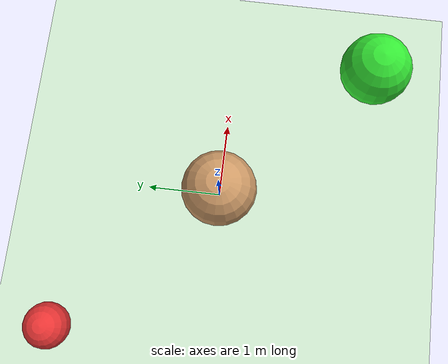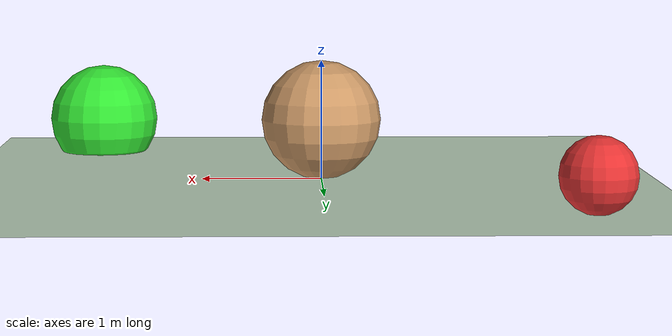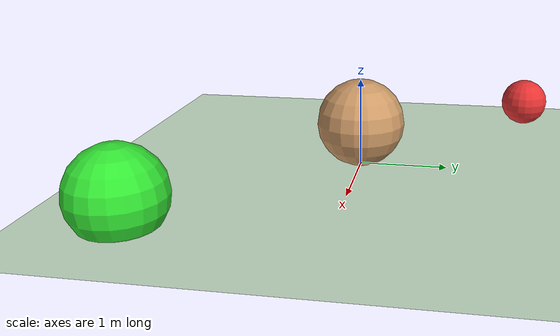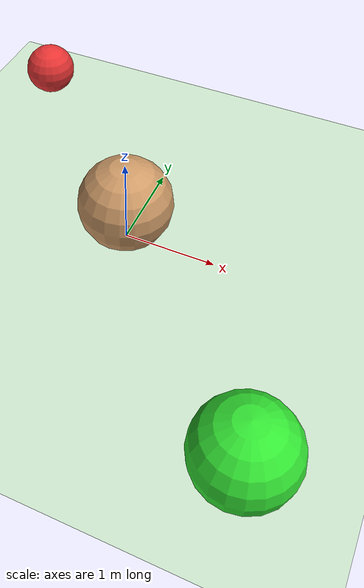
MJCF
<mujoco>
  <compiler inertiafromgeom="true" angle="degree" coordinate="local" />
  <option timestep="0.02" integrator="RK4" />
  <default>
    <joint limited="false" armature="0" damping="0" />
    <geom condim="3" conaffinity="0" margin="0" friction="1 0.5 0.5" rgba="0.8 0.6 0.4 1" density="100" />
  </default>
  <asset>
    <texture type="skybox" builtin="gradient" width="100" height="100" rgb1="1 1 1" rgb2="0 0 0" />
    <texture name="texgeom" type="cube" builtin="flat" mark="cross" width="127" height="1278" rgb1="0.8 0.6 0.4" rgb2="0.8 0.6 0.4" markrgb="1 1 1" random="0.01" />
    <texture name="texplane" type="2d" builtin="checker" rgb1="0 0 0" rgb2="0.8 0.8 0.8" width="100" height="100" />
    <material name='MatPlane' texture="texplane" shininess="1" texrepeat="30 30" specular="1"  reflectance="0.5" />
    <material name='geom' texture="texgeom" texuniform="true" />
  </asset>
  <worldbody>
    <light directional="true" cutoff="100" exponent="1" diffuse="1 1 1" specular=".1 .1 .1" pos="0 0 1.3" dir="-0 0 -1.3" />
    <geom name='floor' material="" pos='0 0 0' size='40 40 40' type='plane' conaffinity='1' rgba='0.8 0.9 0.8 1' condim='3' />
    <body name="torso" pos="0 0 0">
      <geom name="pointbody" type="sphere" size="0.5" pos="0 0 0.5"/>
      <joint name='ballx' type='slide' axis='1 0 0' pos='0 0 0' />
      <joint name='bally' type='slide' axis='0 1 0' pos='0 0 0' />
    </body>

    <body name="target" pos="2 -2 .3">
      <geom conaffinity="0" contype="0" name="target" pos="0 0 0" rgba="0.2 0.9 0.2 1" size=".5" type="sphere"/>
    </body>

    <body name="highlevel" pos="-2 2 0.3">
      <geom conaffinity="0" contype="0" name="highlevel" pos="0 0 0" rgba="0.9 0.2 0.2 1" size=".3" type="sphere"/>
    </body>

  </worldbody>

  <actuator>
    <!-- Those are just dummy actuators for providing ranges, previously the gear was set to 100 -->
    <motor joint='ballx' ctrlrange="-1 1" ctrllimited="true" gear="75"/>
    <motor joint='bally' ctrlrange="-1 1" ctrllimited="true" gear="75"/>
  </actuator>
</mujoco>
